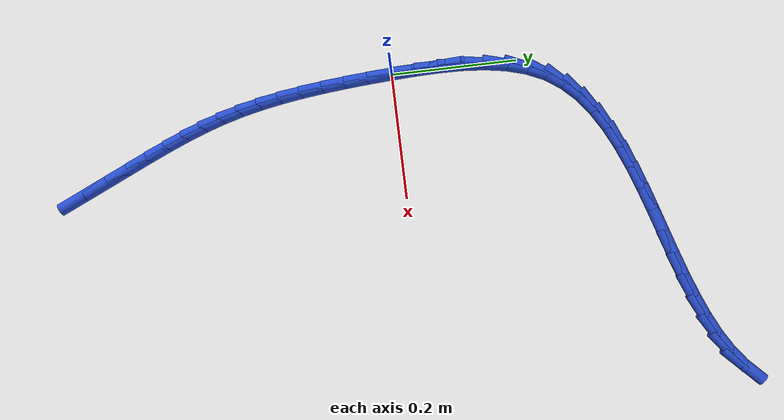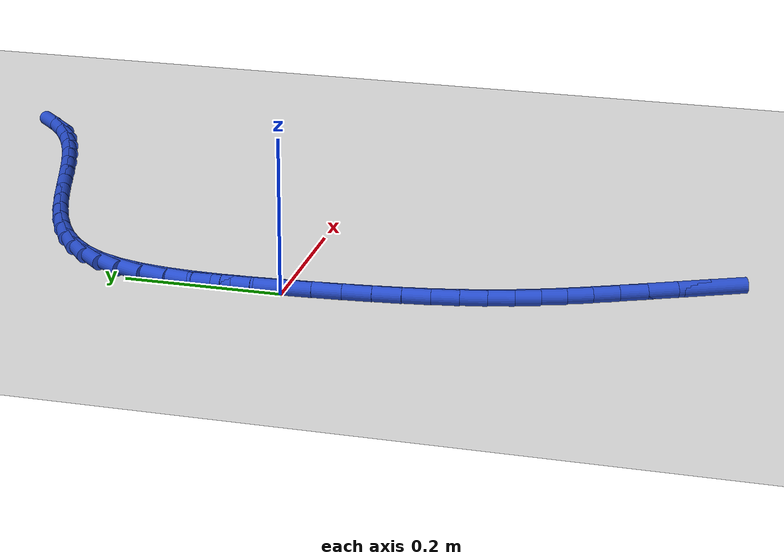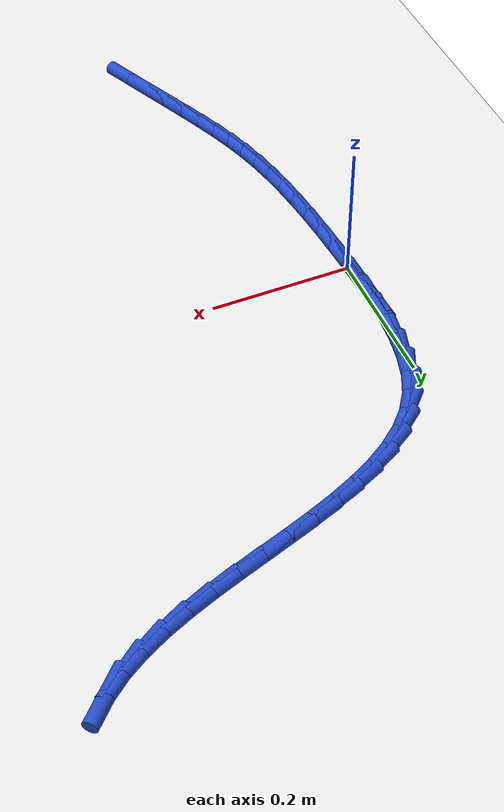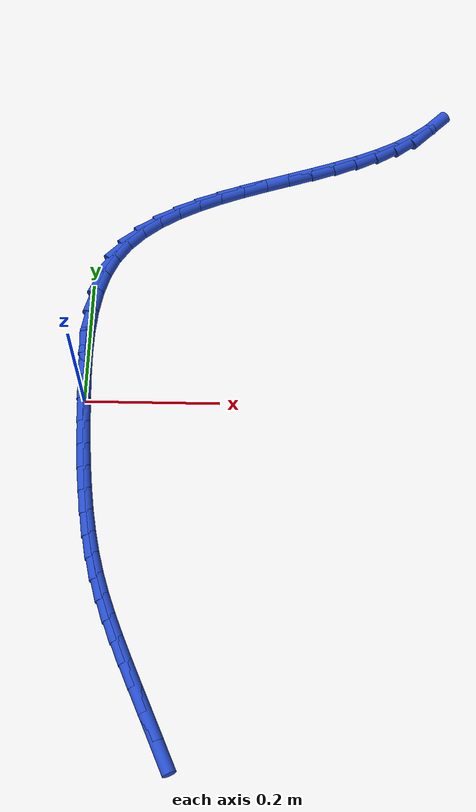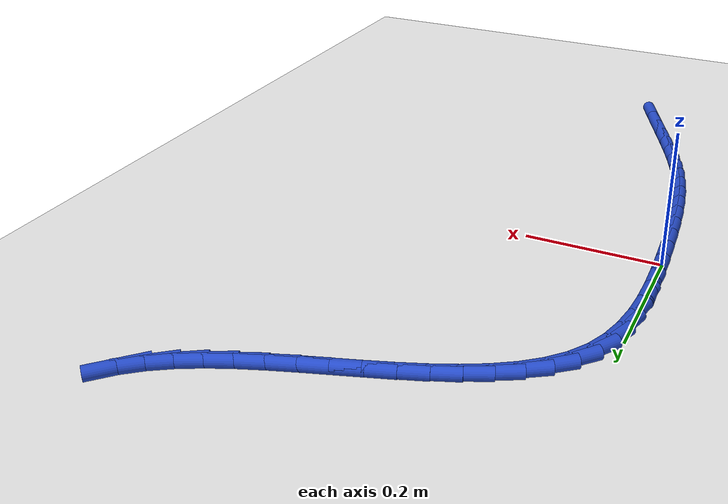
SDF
<sdf version="1.6">
 <world name="default">
  <model name="ground_plane">
   <static>1</static>
   <link name="link">
    <collision name="collision">
     <geometry><plane><normal>0 0 1</normal><size>100 100</size></plane></geometry>
     <surface><friction><ode><mu>100</mu><mu2>50</mu2></ode></friction></surface>
    </collision>
    <visual name="visual">
     <cast_shadows>0</cast_shadows>
     <geometry><plane><normal>0 0 1</normal><size>100 100</size></plane></geometry>
     <material>
      <script><uri>file://media/materials/scripts/gazebo.material</uri><name>Gazebo/WhiteGlow</name></script>
     </material>
    </visual>
   </link>
  </model>
  <model name="line">
   <link name="link_0">
    <pose>-2.168404344971009e-18 2.0816681711721685e-17 0.01 0 1.57 -1.5237629214470472</pose>
    <collision name="collision">
     <geometry><cylinder><radius>0.01</radius><length>0.08</length></cylinder></geometry>
    </collision>
    <visual name="visual">
     <material>
      <script><name>Gazebo/Blue</name><uri>file://media/materials/scripts/gazebo.material</uri></script>
     </material>
     <geometry><cylinder><radius>0.01</radius><length>0.08</length></cylinder></geometry>
    </visual>
   </link>
   <link name="link_1">
    <pose>-0.0017802640367481615 0.037823140768470674 0.01 0 1.57 -1.5489615800214063</pose>
    <collision name="collision">
     <geometry><cylinder><radius>0.01</radius><length>0.08</length></cylinder></geometry>
    </collision>
    <visual name="visual">
     <material>
      <script><name>Gazebo/Blue</name><uri>file://media/materials/scripts/gazebo.material</uri></script>
     </material>
     <geometry><cylinder><radius>0.01</radius><length>0.08</length></cylinder></geometry>
    </visual>
   </link>
   <link name="link_2">
    <pose>-0.002605405921722715 0.07560744662147856 0.01 0 1.57 1.5508404619330156</pose>
    <collision name="collision">
     <geometry><cylinder><radius>0.01</radius><length>0.08</length></cylinder></geometry>
    </collision>
    <visual name="visual">
     <material>
      <script><name>Gazebo/Blue</name><uri>file://media/materials/scripts/gazebo.material</uri></script>
     </material>
     <geometry><cylinder><radius>0.01</radius><length>0.08</length></cylinder></geometry>
    </visual>
   </link>
   <link name="link_3">
    <pose>-0.0018631428033497226 0.1127977457538077 0.01 0 1.57 1.4899005535824652</pose>
    <collision name="collision">
     <geometry><cylinder><radius>0.01</radius><length>0.08</length></cylinder></geometry>
    </collision>
    <visual name="visual">
     <material>
      <script><name>Gazebo/Blue</name><uri>file://media/materials/scripts/gazebo.material</uri></script>
     </material>
     <geometry><cylinder><radius>0.01</radius><length>0.08</length></cylinder></geometry>
    </visual>
   </link>
   <link name="link_4">
    <pose>0.0010588081699447506 0.14883886636024216 0.01 0 1.57 1.4058990972291876</pose>
    <collision name="collision">
     <geometry><cylinder><radius>0.01</radius><length>0.08</length></cylinder></geometry>
    </collision>
    <visual name="visual">
     <material>
      <script><name>Gazebo/Blue</name><uri>file://media/materials/scripts/gazebo.material</uri></script>
     </material>
     <geometry><cylinder><radius>0.01</radius><length>0.08</length></cylinder></geometry>
    </visual>
   </link>
   <link name="link_5">
    <pose>0.006772729849734651 0.18317563663556596 0.01 0 1.57 1.293844692095471</pose>
    <collision name="collision">
     <geometry><cylinder><radius>0.01</radius><length>0.08</length></cylinder></geometry>
    </collision>
    <visual name="visual">
     <material>
      <script><name>Gazebo/Blue</name><uri>file://media/materials/scripts/gazebo.material</uri></script>
     </material>
     <geometry><cylinder><radius>0.01</radius><length>0.08</length></cylinder></geometry>
    </visual>
   </link>
   <link name="link_6">
    <pose>0.015890905087593915 0.215252884774563 0.01 0 1.57 1.1488930606979704</pose>
    <collision name="collision">
     <geometry><cylinder><radius>0.01</radius><length>0.08</length></cylinder></geometry>
    </collision>
    <visual name="visual">
     <material>
      <script><name>Gazebo/Blue</name><uri>file://media/materials/scripts/gazebo.material</uri></script>
     </material>
     <geometry><cylinder><radius>0.01</radius><length>0.08</length></cylinder></geometry>
    </visual>
   </link>
   <link name="link_7">
    <pose>0.029025616735096484 0.24451543897201744 0.01 0 1.57 0.9742799033593439</pose>
    <collision name="collision">
     <geometry><cylinder><radius>0.01</radius><length>0.08</length></cylinder></geometry>
    </collision>
    <visual name="visual">
     <material>
      <script><name>Gazebo/Blue</name><uri>file://media/materials/scripts/gazebo.material</uri></script>
     </material>
     <geometry><cylinder><radius>0.01</radius><length>0.08</length></cylinder></geometry>
    </visual>
   </link>
   <link name="link_8">
    <pose>0.04667256238282534 0.27050371364269954 0.01 0 1.57 0.8065654453665723</pose>
    <collision name="collision">
     <geometry><cylinder><radius>0.01</radius><length>0.08</length></cylinder></geometry>
    </collision>
    <visual name="visual">
     <material>
      <script><name>Gazebo/Blue</name><uri>file://media/materials/scripts/gazebo.material</uri></script>
     </material>
     <geometry><cylinder><radius>0.01</radius><length>0.08</length></cylinder></geometry>
    </visual>
   </link>
   <link name="link_9">
    <pose>0.06858651710284266 0.2933655926383066 0.01 0 1.57 0.6652715669156853</pose>
    <collision name="collision">
     <geometry><cylinder><radius>0.01</radius><length>0.08</length></cylinder></geometry>
    </collision>
    <visual name="visual">
     <material>
      <script><name>Gazebo/Blue</name><uri>file://media/materials/scripts/gazebo.material</uri></script>
     </material>
     <geometry><cylinder><radius>0.01</radius><length>0.08</length></cylinder></geometry>
    </visual>
   </link>
   <link name="link_10">
    <pose>0.09423215118579009 0.3134868116557885 0.01 0 1.57 0.5521163759444384</pose>
    <collision name="collision">
     <geometry><cylinder><radius>0.01</radius><length>0.08</length></cylinder></geometry>
    </collision>
    <visual name="visual">
     <material>
      <script><name>Gazebo/Blue</name><uri>file://media/materials/scripts/gazebo.material</uri></script>
     </material>
     <geometry><cylinder><radius>0.01</radius><length>0.08</length></cylinder></geometry>
    </visual>
   </link>
   <link name="link_11">
    <pose>0.12307345899037024 0.33125366057689043 0.01 0 1.57 0.46487299728538056</pose>
    <collision name="collision">
     <geometry><cylinder><radius>0.01</radius><length>0.08</length></cylinder></geometry>
    </collision>
    <visual name="visual">
     <material>
      <script><name>Gazebo/Blue</name><uri>file://media/materials/scripts/gazebo.material</uri></script>
     </material>
     <geometry><cylinder><radius>0.01</radius><length>0.08</length></cylinder></geometry>
    </visual>
   </link>
   <link name="link_12">
    <pose>0.15457443487528585 0.34705242928335783 0.01 0 1.57 0.4000178957762174</pose>
    <collision name="collision">
     <geometry><cylinder><radius>0.01</radius><length>0.08</length></cylinder></geometry>
    </collision>
    <visual name="visual">
     <material>
      <script><name>Gazebo/Blue</name><uri>file://media/materials/scripts/gazebo.material</uri></script>
     </material>
     <geometry><cylinder><radius>0.01</radius><length>0.08</length></cylinder></geometry>
    </visual>
   </link>
   <link name="link_13">
    <pose>0.18819907319923954 0.3612694076569358 0.01 0 1.57 0.35420327086516223</pose>
    <collision name="collision">
     <geometry><cylinder><radius>0.01</radius><length>0.08</length></cylinder></geometry>
    </collision>
    <visual name="visual">
     <material>
      <script><name>Gazebo/Blue</name><uri>file://media/materials/scripts/gazebo.material</uri></script>
     </material>
     <geometry><cylinder><radius>0.01</radius><length>0.08</length></cylinder></geometry>
    </visual>
   </link>
   <link name="link_14">
    <pose>0.22341136832093392 0.37429088557936985 0.01 0 1.57 0.3248318928129219</pose>
    <collision name="collision">
     <geometry><cylinder><radius>0.01</radius><length>0.08</length></cylinder></geometry>
    </collision>
    <visual name="visual">
     <material>
      <script><name>Gazebo/Blue</name><uri>file://media/materials/scripts/gazebo.material</uri></script>
     </material>
     <geometry><cylinder><radius>0.01</radius><length>0.08</length></cylinder></geometry>
    </visual>
   </link>
   <link name="link_15">
    <pose>0.25967531459907156 0.38650315293240517 0.01 0 1.57 0.31019311026481466</pose>
    <collision name="collision">
     <geometry><cylinder><radius>0.01</radius><length>0.08</length></cylinder></geometry>
    </collision>
    <visual name="visual">
     <material>
      <script><name>Gazebo/Blue</name><uri>file://media/materials/scripts/gazebo.material</uri></script>
     </material>
     <geometry><cylinder><radius>0.01</radius><length>0.08</length></cylinder></geometry>
    </visual>
   </link>
   <link name="link_16">
    <pose>0.2964549063923554 0.3982924995977871 0.01 0 1.57 0.30945027306328715</pose>
    <collision name="collision">
     <geometry><cylinder><radius>0.01</radius><length>0.08</length></cylinder></geometry>
    </collision>
    <visual name="visual">
     <material>
      <script><name>Gazebo/Blue</name><uri>file://media/materials/scripts/gazebo.material</uri></script>
     </material>
     <geometry><cylinder><radius>0.01</radius><length>0.08</length></cylinder></geometry>
    </visual>
   </link>
   <link name="link_17">
    <pose>0.33321413805948785 0.410045215457261 0.01 0 1.57 0.3226142611338863</pose>
    <collision name="collision">
     <geometry><cylinder><radius>0.01</radius><length>0.08</length></cylinder></geometry>
    </collision>
    <visual name="visual">
     <material>
      <script><name>Gazebo/Blue</name><uri>file://media/materials/scripts/gazebo.material</uri></script>
     </material>
     <geometry><cylinder><radius>0.01</radius><length>0.08</length></cylinder></geometry>
    </visual>
   </link>
   <link name="link_18">
    <pose>0.36941700395917165 0.42214759039257194 0.01 0 1.57 0.3505526300368972</pose>
    <collision name="collision">
     <geometry><cylinder><radius>0.01</radius><length>0.08</length></cylinder></geometry>
    </collision>
    <visual name="visual">
     <material>
      <script><name>Gazebo/Blue</name><uri>file://media/materials/scripts/gazebo.material</uri></script>
     </material>
     <geometry><cylinder><radius>0.01</radius><length>0.08</length></cylinder></geometry>
    </visual>
   </link>
   <link name="link_19">
    <pose>0.4045274984501094 0.4349859142854655 0.01 0 1.57 0.3950374481154847</pose>
    <collision name="collision">
     <geometry><cylinder><radius>0.01</radius><length>0.08</length></cylinder></geometry>
    </collision>
    <visual name="visual">
     <material>
      <script><name>Gazebo/Blue</name><uri>file://media/materials/scripts/gazebo.material</uri></script>
     </material>
     <geometry><cylinder><radius>0.01</radius><length>0.08</length></cylinder></geometry>
    </visual>
   </link>
   <link name="link_20">
    <pose>0.4380096158910036 0.4489464770176867 0.01 0 1.57 0.4587881123124792</pose>
    <collision name="collision">
     <geometry><cylinder><radius>0.01</radius><length>0.08</length></cylinder></geometry>
    </collision>
    <visual name="visual">
     <material>
      <script><name>Gazebo/Blue</name><uri>file://media/materials/scripts/gazebo.material</uri></script>
     </material>
     <geometry><cylinder><radius>0.01</radius><length>0.08</length></cylinder></geometry>
    </visual>
   </link>
   <link name="link_21">
    <pose>0.4693273506405574 0.4644155684709812 0.01 0 1.57 0.5453765180381601</pose>
    <collision name="collision">
     <geometry><cylinder><radius>0.01</radius><length>0.08</length></cylinder></geometry>
    </collision>
    <visual name="visual">
     <material>
      <script><name>Gazebo/Blue</name><uri>file://media/materials/scripts/gazebo.material</uri></script>
     </material>
     <geometry><cylinder><radius>0.01</radius><length>0.08</length></cylinder></geometry>
    </visual>
   </link>
   <link name="link_22">
    <pose>0.497944697057473 0.481779478527094 0.01 0 1.57 0.6579175670772536</pose>
    <collision name="collision">
     <geometry><cylinder><radius>0.01</radius><length>0.08</length></cylinder></geometry>
    </collision>
    <visual name="visual">
     <material>
      <script><name>Gazebo/Blue</name><uri>file://media/materials/scripts/gazebo.material</uri></script>
     </material>
     <geometry><cylinder><radius>0.01</radius><length>0.08</length></cylinder></geometry>
    </visual>
   </link>
   <link name="link_23">
    <pose>0.5233579617456157 0.5014181767640815 0.01 0 1.57 0.7860877448354555</pose>
    <collision name="collision">
     <geometry><cylinder><radius>0.01</radius><length>0.08</length></cylinder></geometry>
    </collision>
    <visual name="visual">
     <material>
      <script><name>Gazebo/Blue</name><uri>file://media/materials/scripts/gazebo.material</uri></script>
     </material>
     <geometry><cylinder><radius>0.01</radius><length>0.08</length></cylinder></geometry>
    </visual>
   </link>
   <link name="link_235">
    <pose>0.1369195635397705 -0.5112707959753942 0.01 0 1.57 -1.1489825385567443</pose>
    <collision name="collision">
     <geometry><cylinder><radius>0.01</radius><length>0.08</length></cylinder></geometry>
    </collision>
    <visual name="visual">
     <material>
      <script><name>Gazebo/Blue</name><uri>file://media/materials/scripts/gazebo.material</uri></script>
     </material>
     <geometry><cylinder><radius>0.01</radius><length>0.08</length></cylinder></geometry>
    </visual>
   </link>
   <link name="link_236">
    <pose>0.11815128670787786 -0.4694473209750227 0.01 0 1.57 -1.1467987761669116</pose>
    <collision name="collision">
     <geometry><cylinder><radius>0.01</radius><length>0.08</length></cylinder></geometry>
    </collision>
    <visual name="visual">
     <material>
      <script><name>Gazebo/Blue</name><uri>file://media/materials/scripts/gazebo.material</uri></script>
     </material>
     <geometry><cylinder><radius>0.01</radius><length>0.08</length></cylinder></geometry>
    </visual>
   </link>
   <link name="link_237">
    <pose>0.10103761592282239 -0.4315328684421771 0.01 0 1.57 -1.1507376526421507</pose>
    <collision name="collision">
     <geometry><cylinder><radius>0.01</radius><length>0.08</length></cylinder></geometry>
    </collision>
    <visual name="visual">
     <material>
      <script><name>Gazebo/Blue</name><uri>file://media/materials/scripts/gazebo.material</uri></script>
     </material>
     <geometry><cylinder><radius>0.01</radius><length>0.08</length></cylinder></geometry>
    </visual>
   </link>
   <link name="link_238">
    <pose>0.08553850354251732 -0.39683151851580206 0.01 0 1.57 -1.1630250964992013</pose>
    <collision name="collision">
     <geometry><cylinder><radius>0.01</radius><length>0.08</length></cylinder></geometry>
    </collision>
    <visual name="visual">
     <material>
      <script><name>Gazebo/Blue</name><uri>file://media/materials/scripts/gazebo.material</uri></script>
     </material>
     <geometry><cylinder><radius>0.01</radius><length>0.08</length></cylinder></geometry>
    </visual>
   </link>
   <link name="link_239">
    <pose>0.07159611268845652 -0.3645562680459622 0.01 0 1.57 -1.184981781016418</pose>
    <collision name="collision">
     <geometry><cylinder><radius>0.01</radius><length>0.08</length></cylinder></geometry>
    </collision>
    <visual name="visual">
     <material>
      <script><name>Gazebo/Blue</name><uri>file://media/materials/scripts/gazebo.material</uri></script>
     </material>
     <geometry><cylinder><radius>0.01</radius><length>0.08</length></cylinder></geometry>
    </visual>
   </link>
   <link name="link_240">
    <pose>0.05915260648213405 -0.33392011388272314 0.01 0 1.57 -1.216937575860852</pose>
    <collision name="collision">
     <geometry><cylinder><radius>0.01</radius><length>0.08</length></cylinder></geometry>
    </collision>
    <visual name="visual">
     <material>
      <script><name>Gazebo/Blue</name><uri>file://media/materials/scripts/gazebo.material</uri></script>
     </material>
     <geometry><cylinder><radius>0.01</radius><length>0.08</length></cylinder></geometry>
    </visual>
   </link>
   <link name="link_241">
    <pose>0.048150148045043015 -0.3041360528761479 0.01 0 1.57 -1.257764541514533</pose>
    <collision name="collision">
     <geometry><cylinder><radius>0.01</radius><length>0.08</length></cylinder></geometry>
    </collision>
    <visual name="visual">
     <material>
      <script><name>Gazebo/Blue</name><uri>file://media/materials/scripts/gazebo.material</uri></script>
     </material>
     <geometry><cylinder><radius>0.01</radius><length>0.08</length></cylinder></geometry>
    </visual>
   </link>
   <link name="link_242">
    <pose>0.03853090049867764 -0.27441708187630226 0.01 0 1.57 -1.3047888186621284</pose>
    <collision name="collision">
     <geometry><cylinder><radius>0.01</radius><length>0.08</length></cylinder></geometry>
    </collision>
    <visual name="visual">
     <material>
      <script><name>Gazebo/Blue</name><uri>file://media/materials/scripts/gazebo.material</uri></script>
     </material>
     <geometry><cylinder><radius>0.01</radius><length>0.08</length></cylinder></geometry>
    </visual>
   </link>
   <link name="link_243">
    <pose>0.030236984181027965 -0.2439767328237768 0.01 0 1.57 -1.3522396567512103</pose>
    <collision name="collision">
     <geometry><cylinder><radius>0.01</radius><length>0.08</length></cylinder></geometry>
    </collision>
    <visual name="visual">
     <material>
      <script><name>Gazebo/Blue</name><uri>file://media/materials/scripts/gazebo.material</uri></script>
     </material>
     <geometry><cylinder><radius>0.01</radius><length>0.08</length></cylinder></geometry>
    </visual>
   </link>
   <link name="link_244">
    <pose>0.02319215707985533 -0.21225819439105084 0.01 0 1.57 -1.3931495211083216</pose>
    <collision name="collision">
     <geometry><cylinder><radius>0.01</radius><length>0.08</length></cylinder></geometry>
    </collision>
    <visual name="visual">
     <material>
      <script><name>Gazebo/Blue</name><uri>file://media/materials/scripts/gazebo.material</uri></script>
     </material>
     <geometry><cylinder><radius>0.01</radius><length>0.08</length></cylinder></geometry>
    </visual>
   </link>
   <link name="link_245">
    <pose>0.0172732800628156 -0.17929119451187644 0.01 0 1.57 -1.4273774695559758</pose>
    <collision name="collision">
     <geometry><cylinder><radius>0.01</radius><length>0.08</length></cylinder></geometry>
    </collision>
    <visual name="visual">
     <material>
      <script><name>Gazebo/Blue</name><uri>file://media/materials/scripts/gazebo.material</uri></script>
     </material>
     <geometry><cylinder><radius>0.01</radius><length>0.08</length></cylinder></geometry>
    </visual>
   </link>
   <link name="link_246">
    <pose>0.012349834665919912 -0.1451977539457029 0.01 0 1.57 -1.455672882571698</pose>
    <collision name="collision">
     <geometry><cylinder><radius>0.01</radius><length>0.08</length></cylinder></geometry>
    </collision>
    <visual name="visual">
     <material>
      <script><name>Gazebo/Blue</name><uri>file://media/materials/scripts/gazebo.material</uri></script>
     </material>
     <geometry><cylinder><radius>0.01</radius><length>0.08</length></cylinder></geometry>
    </visual>
   </link>
   <link name="link_247">
    <pose>0.008291302425179385 -0.11009989345197932 0.01 0 1.57 -1.4786700334372997</pose>
    <collision name="collision">
     <geometry><cylinder><radius>0.01</radius><length>0.08</length></cylinder></geometry>
    </collision>
    <visual name="visual">
     <material>
      <script><name>Gazebo/Blue</name><uri>file://media/materials/scripts/gazebo.material</uri></script>
     </material>
     <geometry><cylinder><radius>0.01</radius><length>0.08</length></cylinder></geometry>
    </visual>
   </link>
   <link name="link_248">
    <pose>0.004967164876605139 -0.07411963379015485 0.01 0 1.57 -1.496891597533852</pose>
    <collision name="collision">
     <geometry><cylinder><radius>0.01</radius><length>0.08</length></cylinder></geometry>
    </collision>
    <visual name="visual">
     <material>
      <script><name>Gazebo/Blue</name><uri>file://media/materials/scripts/gazebo.material</uri></script>
     </material>
     <geometry><cylinder><radius>0.01</radius><length>0.08</length></cylinder></geometry>
    </visual>
   </link>
   <link name="link_249">
    <pose>0.002246903556208308 -0.03737899571967876 0.01 0 1.57 -1.510757177535319</pose>
    <collision name="collision">
     <geometry><cylinder><radius>0.01</radius><length>0.08</length></cylinder></geometry>
    </collision>
    <visual name="visual">
     <material>
      <script><name>Gazebo/Blue</name><uri>file://media/materials/scripts/gazebo.material</uri></script>
     </material>
     <geometry><cylinder><radius>0.01</radius><length>0.08</length></cylinder></geometry>
    </visual>
   </link>
   <link name="link_250">
    <pose>1.474514954580286e-17 -2.2898349882893854e-16 0.01 0 1.57 -1.5205931957684844</pose>
    <collision name="collision">
     <geometry><cylinder><radius>0.01</radius><length>0.08</length></cylinder></geometry>
    </collision>
    <visual name="visual">
     <material>
      <script><name>Gazebo/Blue</name><uri>file://media/materials/scripts/gazebo.material</uri></script>
     </material>
     <geometry><cylinder><radius>0.01</radius><length>0.08</length></cylinder></geometry>
    </visual>
   </link>
   <link name="link_251">
    <pose>-0.001904064256008614 0.03789533260943154 0.01 0 1.57 -1.52664225552462</pose>
    <collision name="collision">
     <geometry><cylinder><radius>0.01</radius><length>0.08</length></cylinder></geometry>
    </collision>
    <visual name="visual">
     <material>
      <script><name>Gazebo/Blue</name><uri>file://media/materials/scripts/gazebo.material</uri></script>
     </material>
     <geometry><cylinder><radius>0.01</radius><length>0.08</length></cylinder></geometry>
    </visual>
   </link>
   <link name="link_252">
    <pose>-0.003595807675806453 0.07618498134916735 0.01 0 1.57 -1.523632948081426</pose>
    <collision name="collision">
     <geometry><cylinder><radius>0.01</radius><length>0.08</length></cylinder></geometry>
    </collision>
    <visual name="visual">
     <material>
      <script><name>Gazebo/Blue</name><uri>file://media/materials/scripts/gazebo.material</uri></script>
     </material>
     <geometry><cylinder><radius>0.01</radius><length>0.08</length></cylinder></geometry>
    </visual>
   </link>
  </model>
 </world>
</sdf>
